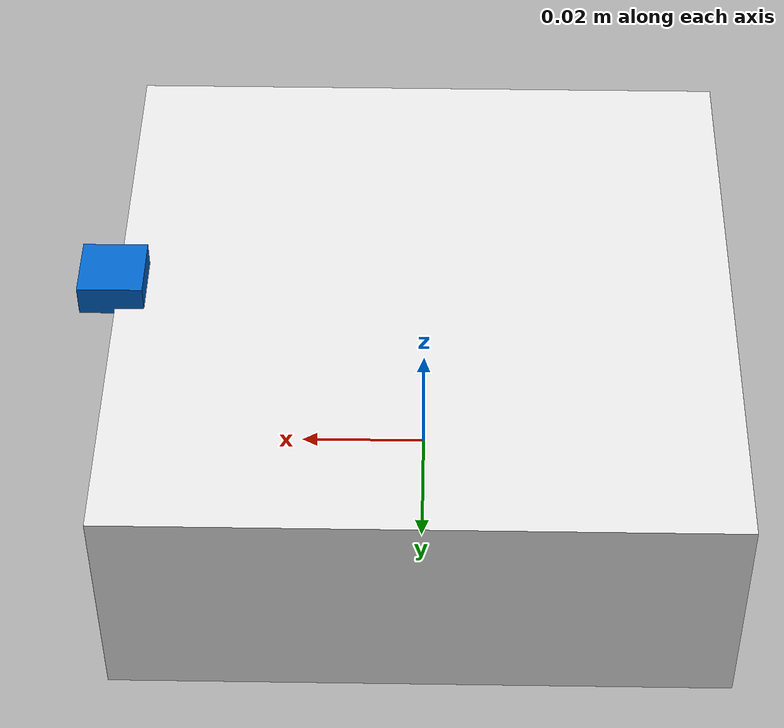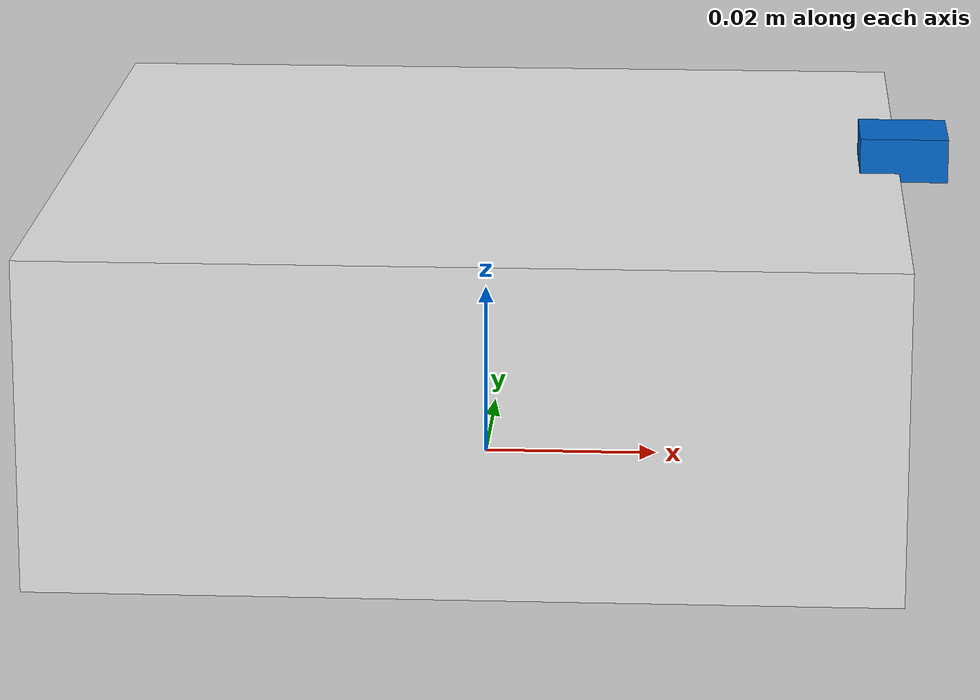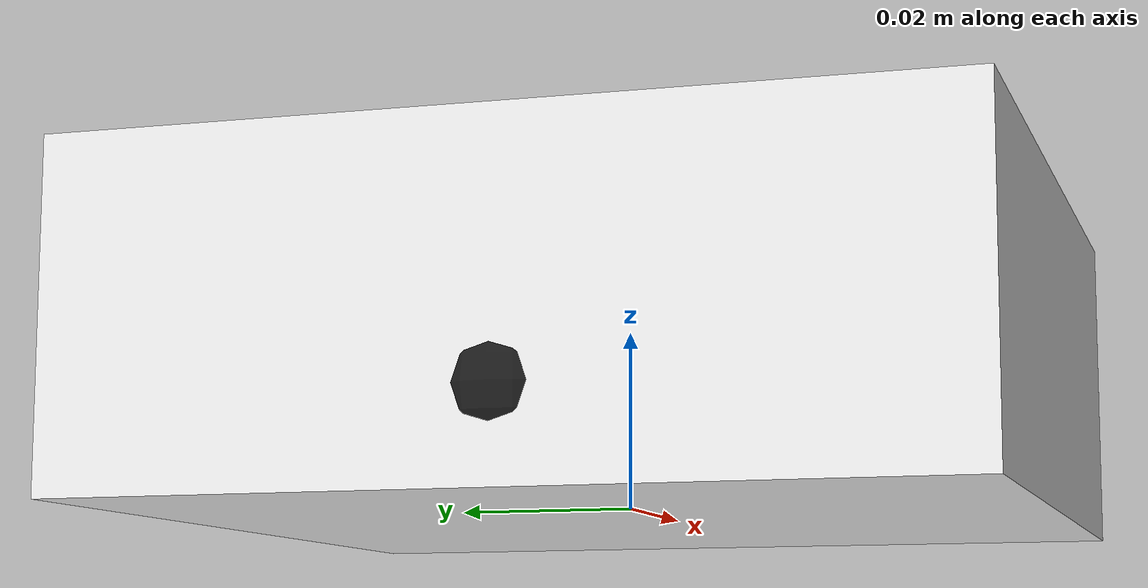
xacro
<?xml version="1.0"?>
<robot xmlns:xacro="http://www.ros.org/wiki/xacro" name="alvik">

  <!-- ── Parametri ──────────────────────────────────────────────────────── -->
  <xacro:property name="body_length" value="0.095"/>  <!-- m, fronte-retro -->
  <xacro:property name="body_width"  value="0.096"/>  <!-- m, sinistra-destra -->
  <xacro:property name="body_height" value="0.037"/>  <!-- m, altezza -->

  <xacro:property name="wheel_radius" value="0.017"/>
  <xacro:property name="wheel_width"  value="0.005"/>
  <xacro:property name="base_width"   value="0.090"/>  <!-- m, centro-centro ruote -->

  <xacro:property name="tof_x"   value="0.048"/>   <!-- m, frontale dal centro -->
  <xacro:property name="tof_z"   value="0.020"/>   <!-- m, altezza dal suolo -->

  <xacro:property name="caster_x" value="-0.040"/> <!-- m, posteriore -->

  <!-- ── Materiali ──────────────────────────────────────────────────────── -->
  <material name="white">
    <color rgba="0.9 0.9 0.9 1.0"/>
  </material>
  <material name="dark_gray">
    <color rgba="0.2 0.2 0.2 1.0"/>
  </material>
  <material name="blue">
    <color rgba="0.0 0.4 0.8 1.0"/>
  </material>
  <material name="black">
    <color rgba="0.1 0.1 0.1 1.0"/>
  </material>

  <!-- ── base_footprint ────────────────────────────────────────────────── -->
  <!-- Link a terra — punto di riferimento Nav2 -->
  <link name="base_footprint"/>

  <joint name="base_joint" type="fixed">
    <parent link="base_footprint"/>
    <child  link="base_link"/>
    <origin xyz="0 0 ${wheel_radius}" rpy="0 0 0"/>
  </joint>

  <!-- ── base_link — corpo principale ─────────────────────────────────── -->
  <link name="base_link">
    <visual>
      <origin xyz="0 0 0" rpy="0 0 0"/>
      <geometry>
        <box size="${body_length} ${body_width} ${body_height}"/>
      </geometry>
      <material name="white"/>
    </visual>
    <collision>
      <origin xyz="0 0 0" rpy="0 0 0"/>
      <geometry>
        <box size="${body_length} ${body_width} ${body_height}"/>
      </geometry>
    </collision>
    <inertial>
      <mass value="0.192"/>
      <origin xyz="0 0 0" rpy="0 0 0"/>
      <inertia
        ixx="${(0.192/12) * (body_width*body_width + body_height*body_height)}"
        iyy="${(0.192/12) * (body_length*body_length + body_height*body_height)}"
        izz="${(0.192/12) * (body_length*body_length + body_width*body_width)}"
        ixy="0" ixz="0" iyz="0"/>
    </inertial>
  </link>

  <!-- ── Macro ruota ───────────────────────────────────────────────────── -->
  <xacro:macro name="wheel" params="name side reflect">
    <link name="${name}_wheel">
      <visual>
        <origin xyz="0 0 0" rpy="${pi/2} 0 0"/>
        <geometry>
          <cylinder radius="${wheel_radius}" length="${wheel_width}"/>
        </geometry>
        <material name="dark_gray"/>
      </visual>
      <collision>
        <origin xyz="0 0 0" rpy="${pi/2} 0 0"/>
        <geometry>
          <cylinder radius="${wheel_radius}" length="${wheel_width}"/>
        </geometry>
      </collision>
      <inertial>
        <mass value="0.020"/>
        <origin xyz="0 0 0" rpy="0 0 0"/>
        <inertia
          ixx="${(0.020/12) * (3*wheel_radius*wheel_radius + wheel_width*wheel_width)}"
          iyy="${(0.020/12) * (3*wheel_radius*wheel_radius + wheel_width*wheel_width)}"
          izz="${(0.020/2) * wheel_radius*wheel_radius}"
          ixy="0" ixz="0" iyz="0"/>
      </inertial>
    </link>

    <joint name="${name}_wheel_joint" type="continuous">
      <parent link="base_link"/>
      <child  link="${name}_wheel"/>
      <origin xyz="0 ${reflect * base_width/2} 0" rpy="0 0 0"/>
      <axis xyz="0 1 0"/>
    </joint>
  </xacro:macro>

  <xacro:wheel name="left"  side="left"  reflect="1"/>
  <xacro:wheel name="right" side="right" reflect="-1"/>

  <!-- ── Castoro posteriore ────────────────────────────────────────────── -->
  <link name="caster_link">
    <visual>
      <origin xyz="0 0 0" rpy="0 0 0"/>
      <geometry>
        <sphere radius="${wheel_radius * 0.5}"/>
      </geometry>
      <material name="black"/>
    </visual>
    <collision>
      <origin xyz="0 0 0" rpy="0 0 0"/>
      <geometry>
        <sphere radius="${wheel_radius * 0.5}"/>
      </geometry>
    </collision>
    <inertial>
      <mass value="0.005"/>
      <origin xyz="0 0 0" rpy="0 0 0"/>
      <inertia
        ixx="${(2.0/5.0) * 0.005 * (wheel_radius*0.5)*(wheel_radius*0.5)}"
        iyy="${(2.0/5.0) * 0.005 * (wheel_radius*0.5)*(wheel_radius*0.5)}"
        izz="${(2.0/5.0) * 0.005 * (wheel_radius*0.5)*(wheel_radius*0.5)}"
        ixy="0" ixz="0" iyz="0"/>
    </inertial>
  </link>

  <joint name="caster_joint" type="fixed">
    <parent link="base_link"/>
    <child  link="caster_link"/>
    <origin xyz="${caster_x} 0 ${-wheel_radius * 0.5}" rpy="0 0 0"/>
  </joint>

  <!-- ── Sensore ToF frontale ───────────────────────────────────────────── -->
  <link name="tof_link">
    <visual>
      <origin xyz="0 0 0" rpy="0 0 0"/>
      <geometry>
        <box size="0.010 0.010 0.005"/>
      </geometry>
      <material name="blue"/>
    </visual>
    <inertial>
      <mass value="0.001"/>
      <origin xyz="0 0 0" rpy="0 0 0"/>
      <inertia ixx="0.0" iyy="0.0" izz="0.0" ixy="0" ixz="0" iyz="0"/>
    </inertial>
  </link>

  <joint name="tof_joint" type="fixed">
    <parent link="base_link"/>
    <child  link="tof_link"/>
    <origin xyz="${tof_x} 0 ${tof_z}" rpy="0 0 0"/>
  </joint>

  <!-- ── Frame laser scan (coincide con tof_link per /scan) ────────────── -->
  <link name="laser_frame"/>

  <joint name="laser_joint" type="fixed">
    <parent link="tof_link"/>
    <child  link="laser_frame"/>
    <origin xyz="0 0 0" rpy="0 0 0"/>
  </joint>

</robot>
